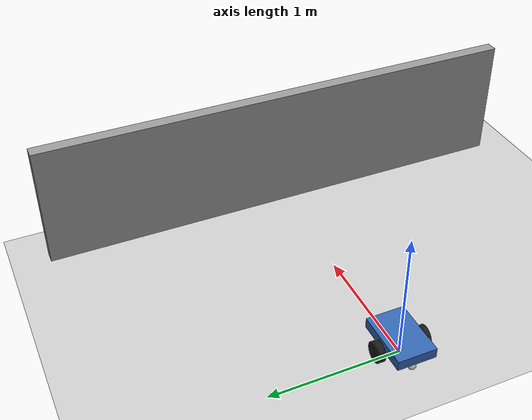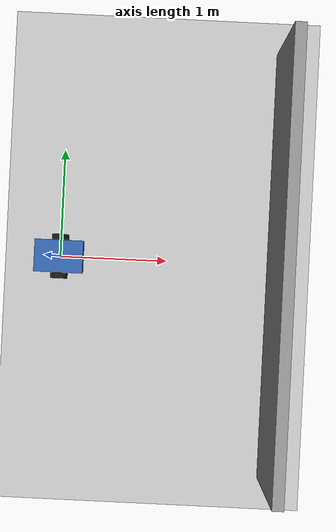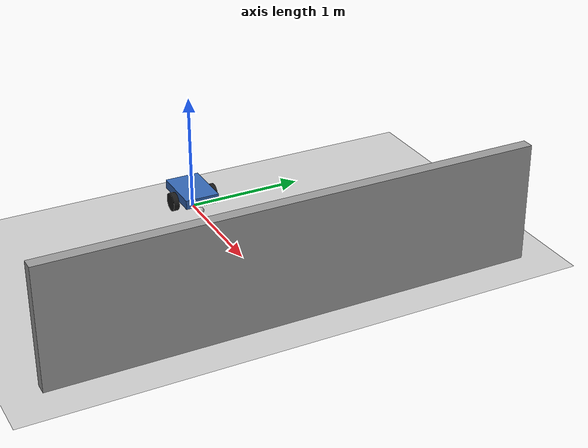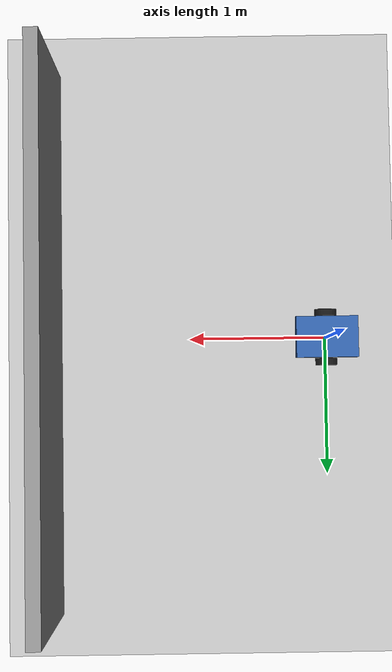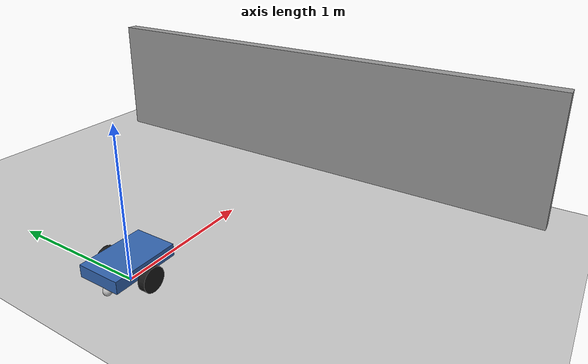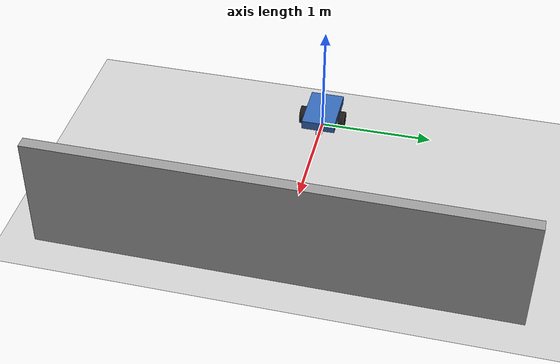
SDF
<?xml version="1.0" ?>
<sdf version="1.10">
  <world name="minimal_diff_drive">
    <physics name="1ms" type="ignored">
      <max_step_size>0.001</max_step_size>
      <real_time_factor>1.0</real_time_factor>
    </physics>

    <plugin filename="gz-sim-physics-system" name="gz::sim::systems::Physics" />
    <plugin filename="gz-sim-user-commands-system" name="gz::sim::systems::UserCommands" />
    <plugin filename="gz-sim-scene-broadcaster-system" name="gz::sim::systems::SceneBroadcaster" />
    <plugin filename="gz-sim-sensors-system" name="gz::sim::systems::Sensors">
      <render_engine>ogre2</render_engine>
    </plugin>

    <light type="directional" name="sun">
      <cast_shadows>true</cast_shadows>
      <pose>0 0 10 0 0 0</pose>
      <diffuse>0.8 0.8 0.8 1</diffuse>
      <specular>0.2 0.2 0.2 1</specular>
      <attenuation>
        <range>1000</range>
        <constant>0.9</constant>
        <linear>0.01</linear>
        <quadratic>0.001</quadratic>
      </attenuation>
      <direction>-0.5 0.1 -0.9</direction>
    </light>

    <model name="ground_plane">
      <static>true</static>
      <link name="ground_link">
        <collision name="ground_collision">
          <geometry>
            <plane>
              <normal>0 0 1</normal>
              <size>100 100</size>
            </plane>
          </geometry>
        </collision>
        <visual name="ground_visual">
          <geometry>
            <plane>
              <normal>0 0 1</normal>
              <size>100 100</size>
            </plane>
          </geometry>
          <material>
            <ambient>0.8 0.8 0.8 1</ambient>
            <diffuse>0.8 0.8 0.8 1</diffuse>
          </material>
        </visual>
      </link>
    </model>

    <model name="wall_front">
      <static>true</static>
      <pose>2.0 0 0.5 0 0 0</pose>
      <link name="link">
        <collision name="collision">
          <geometry>
            <box>
              <size>0.1 4.0 1.0</size>
            </box>
          </geometry>
        </collision>
        <visual name="visual">
          <geometry>
            <box>
              <size>0.1 4.0 1.0</size>
            </box>
          </geometry>
          <material>
            <ambient>0.6 0.6 0.6 1</ambient>
            <diffuse>0.6 0.6 0.6 1</diffuse>
          </material>
        </visual>
      </link>
    </model>

    <model name="minibot">
      <pose>0 0 0 0 0 0</pose>

      <link name="chassis">
        <pose>0 0 0.14 0 0 0</pose>
        <inertial>
          <mass>5.0</mass>
          <inertia>
            <ixx>0.12</ixx>
            <iyy>0.20</iyy>
            <izz>0.25</izz>
            <ixy>0.0</ixy>
            <ixz>0.0</ixz>
            <iyz>0.0</iyz>
          </inertia>
        </inertial>
        <collision name="chassis_collision">
          <geometry>
            <box>
              <size>0.45 0.30 0.08</size>
            </box>
          </geometry>
        </collision>
        <visual name="chassis_visual">
          <geometry>
            <box>
              <size>0.45 0.30 0.08</size>
            </box>
          </geometry>
          <material>
            <ambient>0.2 0.4 0.7 1</ambient>
            <diffuse>0.2 0.4 0.7 1</diffuse>
          </material>
        </visual>
        <sensor name="front_lidar" type="gpu_lidar">
          <pose>0.23 0 0.08 0 0 0</pose>
          <topic>/model/minibot/scan</topic>
          <update_rate>10</update_rate>
          <lidar>
            <scan>
              <horizontal>
                <samples>180</samples>
                <resolution>1</resolution>
                <min_angle>-1.57079632679</min_angle>
                <max_angle>1.57079632679</max_angle>
              </horizontal>
            </scan>
            <range>
              <min>0.08</min>
              <max>5.0</max>
              <resolution>0.01</resolution>
            </range>
          </lidar>
          <always_on>true</always_on>
          <visualize>true</visualize>
        </sensor>
      </link>

      <link name="left_wheel">
        <pose>0 0.18 0.08 1.57079632679 0 0</pose>
        <inertial>
          <mass>0.5</mass>
          <inertia>
            <ixx>0.001</ixx>
            <iyy>0.001</iyy>
            <izz>0.001</izz>
            <ixy>0.0</ixy>
            <ixz>0.0</ixz>
            <iyz>0.0</iyz>
          </inertia>
        </inertial>
        <collision name="left_wheel_collision">
          <geometry>
            <cylinder>
              <radius>0.08</radius>
              <length>0.05</length>
            </cylinder>
          </geometry>
          <surface>
            <friction>
              <ode>
                <mu>1.5</mu>
                <mu2>1.5</mu2>
              </ode>
            </friction>
          </surface>
        </collision>
        <visual name="left_wheel_visual">
          <geometry>
            <cylinder>
              <radius>0.08</radius>
              <length>0.05</length>
            </cylinder>
          </geometry>
          <material>
            <ambient>0.1 0.1 0.1 1</ambient>
            <diffuse>0.1 0.1 0.1 1</diffuse>
          </material>
        </visual>
      </link>

      <link name="right_wheel">
        <pose>0 -0.18 0.08 1.57079632679 0 0</pose>
        <inertial>
          <mass>0.5</mass>
          <inertia>
            <ixx>0.001</ixx>
            <iyy>0.001</iyy>
            <izz>0.001</izz>
            <ixy>0.0</ixy>
            <ixz>0.0</ixz>
            <iyz>0.0</iyz>
          </inertia>
        </inertial>
        <collision name="right_wheel_collision">
          <geometry>
            <cylinder>
              <radius>0.08</radius>
              <length>0.05</length>
            </cylinder>
          </geometry>
          <surface>
            <friction>
              <ode>
                <mu>1.5</mu>
                <mu2>1.5</mu2>
              </ode>
            </friction>
          </surface>
        </collision>
        <visual name="right_wheel_visual">
          <geometry>
            <cylinder>
              <radius>0.08</radius>
              <length>0.05</length>
            </cylinder>
          </geometry>
          <material>
            <ambient>0.1 0.1 0.1 1</ambient>
            <diffuse>0.1 0.1 0.1 1</diffuse>
          </material>
        </visual>
      </link>

      <link name="front_caster">
        <pose>0.17 0 0.03 0 0 0</pose>
        <inertial>
          <mass>0.1</mass>
          <inertia>
            <ixx>0.0001</ixx>
            <iyy>0.0001</iyy>
            <izz>0.0001</izz>
            <ixy>0.0</ixy>
            <ixz>0.0</ixz>
            <iyz>0.0</iyz>
          </inertia>
        </inertial>
        <collision name="front_caster_collision">
          <geometry>
            <sphere>
              <radius>0.03</radius>
            </sphere>
          </geometry>
          <surface>
            <friction>
              <ode>
                <mu>0.05</mu>
                <mu2>0.05</mu2>
              </ode>
            </friction>
          </surface>
        </collision>
        <visual name="front_caster_visual">
          <geometry>
            <sphere>
              <radius>0.03</radius>
            </sphere>
          </geometry>
        </visual>
      </link>

      <link name="rear_caster">
        <pose>-0.17 0 0.03 0 0 0</pose>
        <inertial>
          <mass>0.1</mass>
          <inertia>
            <ixx>0.0001</ixx>
            <iyy>0.0001</iyy>
            <izz>0.0001</izz>
            <ixy>0.0</ixy>
            <ixz>0.0</ixz>
            <iyz>0.0</iyz>
          </inertia>
        </inertial>
        <collision name="rear_caster_collision">
          <geometry>
            <sphere>
              <radius>0.03</radius>
            </sphere>
          </geometry>
          <surface>
            <friction>
              <ode>
                <mu>0.05</mu>
                <mu2>0.05</mu2>
              </ode>
            </friction>
          </surface>
        </collision>
        <visual name="rear_caster_visual">
          <geometry>
            <sphere>
              <radius>0.03</radius>
            </sphere>
          </geometry>
        </visual>
      </link>

      <joint name="left_wheel_joint" type="revolute">
        <parent>chassis</parent>
        <child>left_wheel</child>
        <axis>
          <xyz>0 0 1</xyz>
          <limit>
            <lower>-1e16</lower>
            <upper>1e16</upper>
          </limit>
        </axis>
      </joint>

      <joint name="right_wheel_joint" type="revolute">
        <parent>chassis</parent>
        <child>right_wheel</child>
        <axis>
          <xyz>0 0 1</xyz>
          <limit>
            <lower>-1e16</lower>
            <upper>1e16</upper>
          </limit>
        </axis>
      </joint>

      <joint name="front_caster_joint" type="fixed">
        <parent>chassis</parent>
        <child>front_caster</child>
      </joint>

      <joint name="rear_caster_joint" type="fixed">
        <parent>chassis</parent>
        <child>rear_caster</child>
      </joint>

      <plugin filename="gz-sim-diff-drive-system" name="gz::sim::systems::DiffDrive">
        <left_joint>left_wheel_joint</left_joint>
        <right_joint>right_wheel_joint</right_joint>
        <wheel_separation>0.36</wheel_separation>
        <wheel_radius>0.08</wheel_radius>
        <odom_publish_frequency>30</odom_publish_frequency>
        <topic>/model/minibot/cmd_vel</topic>
        <odom_topic>/model/minibot/odometry</odom_topic>
        <frame_id>odom</frame_id>
        <child_frame_id>base_link</child_frame_id>
        <max_linear_acceleration>1.0</max_linear_acceleration>
        <max_angular_acceleration>1.5</max_angular_acceleration>
      </plugin>
    </model>
  </world>
</sdf>
